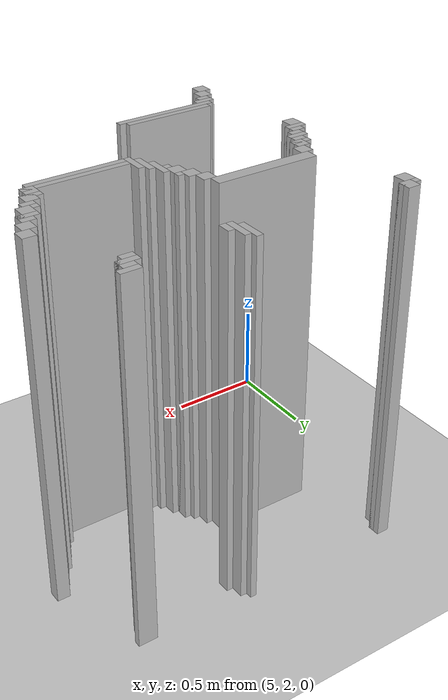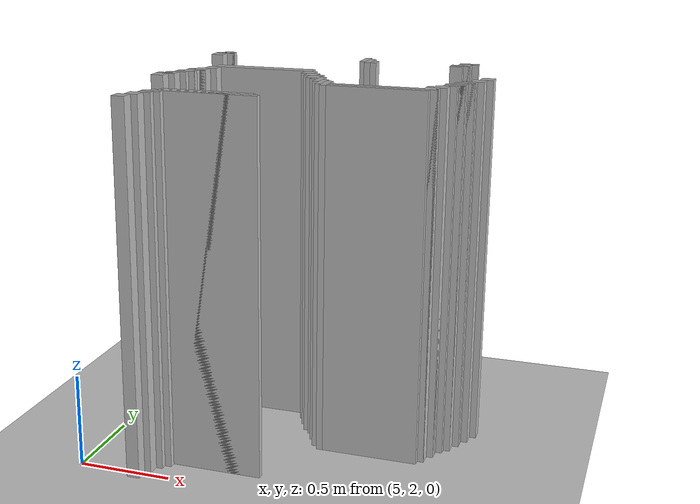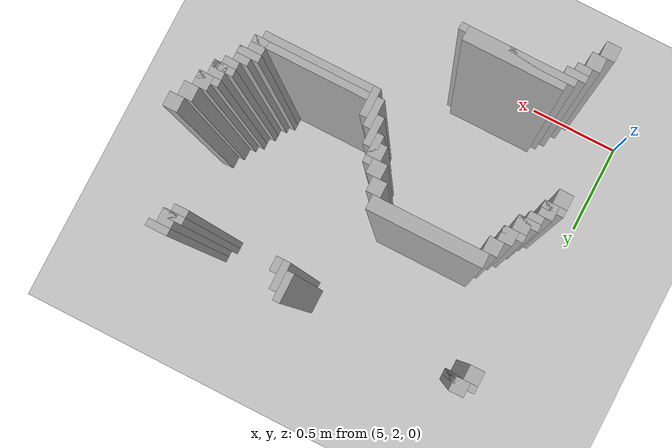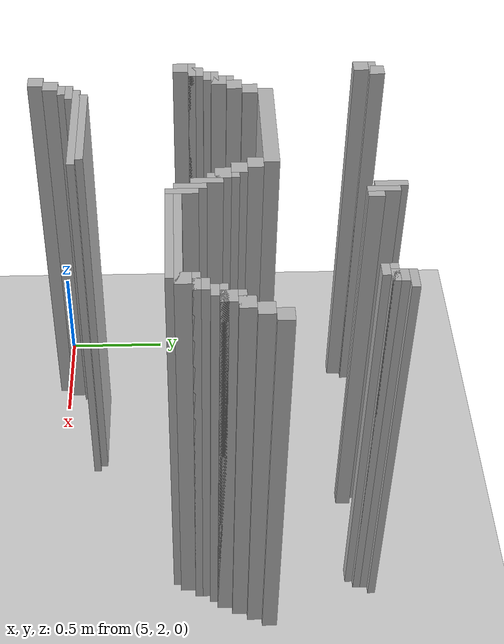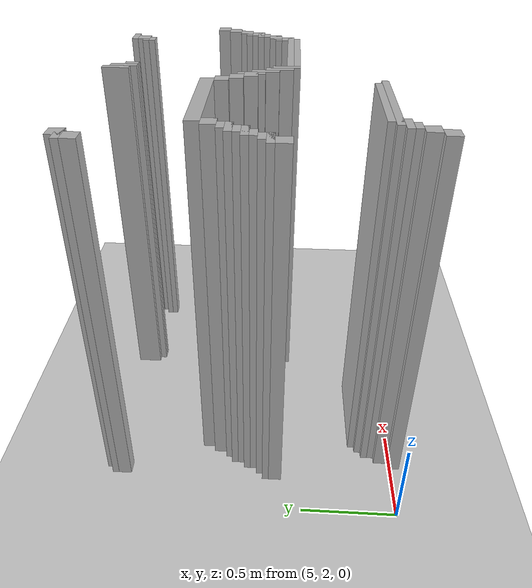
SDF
<sdf version="1.6">
 <world name="slam_world">
  <model name="ground_plane">
   <static>true</static>
   <link name="link">
    <collision name="collision">
     <geometry><plane><normal>0 0 1</normal><size>100 100</size></plane></geometry>
    </collision>
    <visual name="visual">
     <geometry><plane><normal>0 0 1</normal><size>100 100</size></plane></geometry>
     <material>
      <ambient>0.8 0.8 0.8 1</ambient>
      <diffuse>0.8 0.8 0.8 1</diffuse>
      <specular>0.8 0.8 0.8 1</specular>
     </material>
    </visual>
   </link>
  </model>
  <model name="wall_4548">
   <static>true</static>
   <pose>5.25522041763341 3.549883990719257 1.0 0 0 0</pose>
   <link name="link">
    <collision name="collision">
     <geometry><box><size>0.06960556844547564 0.06960556844547564 2.0</size></box></geometry>
    </collision>
    <visual name="visual">
     <geometry><box><size>0.06960556844547564 0.06960556844547564 2.0</size></box></geometry>
     <material><ambient>0.5 0.5 0.5 1</ambient><diffuse>0.7 0.7 0.7 1</diffuse></material>
    </visual>
   </link>
  </model>
  <model name="wall_4549">
   <static>true</static>
   <pose>6.107888631090487 3.51508120649652 1.0 0 0 0</pose>
   <link name="link">
    <collision name="collision">
     <geometry><box><size>0.03480278422273782 0.13921113689095127 2.0</size></box></geometry>
    </collision>
    <visual name="visual">
     <geometry><box><size>0.03480278422273782 0.13921113689095127 2.0</size></box></geometry>
     <material><ambient>0.5 0.5 0.5 1</ambient><diffuse>0.7 0.7 0.7 1</diffuse></material>
    </visual>
   </link>
  </model>
  <model name="wall_4565">
   <static>true</static>
   <pose>5.237819025522041 3.5324825986078885 1.0 0 0 0</pose>
   <link name="link">
    <collision name="collision">
     <geometry><box><size>0.10440835266821345 0.03480278422273782 2.0</size></box></geometry>
    </collision>
    <visual name="visual">
     <geometry><box><size>0.10440835266821345 0.03480278422273782 2.0</size></box></geometry>
     <material><ambient>0.5 0.5 0.5 1</ambient><diffuse>0.7 0.7 0.7 1</diffuse></material>
    </visual>
   </link>
  </model>
  <model name="wall_4566">
   <static>true</static>
   <pose>6.142691415313225 3.480278422273782 1.0 0 0 0</pose>
   <link name="link">
    <collision name="collision">
     <geometry><box><size>0.03480278422273782 0.13921113689095127 2.0</size></box></geometry>
    </collision>
    <visual name="visual">
     <geometry><box><size>0.03480278422273782 0.13921113689095127 2.0</size></box></geometry>
     <material><ambient>0.5 0.5 0.5 1</ambient><diffuse>0.7 0.7 0.7 1</diffuse></material>
    </visual>
   </link>
  </model>
  <model name="wall_4567">
   <static>true</static>
   <pose>6.69953596287703 3.5324825986078885 1.0 0 0 0</pose>
   <link name="link">
    <collision name="collision">
     <geometry><box><size>0.10440835266821345 0.03480278422273782 2.0</size></box></geometry>
    </collision>
    <visual name="visual">
     <geometry><box><size>0.10440835266821345 0.03480278422273782 2.0</size></box></geometry>
     <material><ambient>0.5 0.5 0.5 1</ambient><diffuse>0.7 0.7 0.7 1</diffuse></material>
    </visual>
   </link>
  </model>
  <model name="wall_4579">
   <static>true</static>
   <pose>5.220417633410673 3.480278422273782 1.0 0 0 0</pose>
   <link name="link">
    <collision name="collision">
     <geometry><box><size>0.06960556844547564 0.06960556844547564 2.0</size></box></geometry>
    </collision>
    <visual name="visual">
     <geometry><box><size>0.06960556844547564 0.06960556844547564 2.0</size></box></geometry>
     <material><ambient>0.5 0.5 0.5 1</ambient><diffuse>0.7 0.7 0.7 1</diffuse></material>
    </visual>
   </link>
  </model>
  <model name="wall_4580">
   <static>true</static>
   <pose>6.682134570765661 3.480278422273782 1.0 0 0 0</pose>
   <link name="link">
    <collision name="collision">
     <geometry><box><size>0.06960556844547564 0.06960556844547564 2.0</size></box></geometry>
    </collision>
    <visual name="visual">
     <geometry><box><size>0.06960556844547564 0.06960556844547564 2.0</size></box></geometry>
     <material><ambient>0.5 0.5 0.5 1</ambient><diffuse>0.7 0.7 0.7 1</diffuse></material>
    </visual>
   </link>
  </model>
  <model name="wall_4590">
   <static>true</static>
   <pose>6.177494199535962 3.445475638051044 1.0 0 0 0</pose>
   <link name="link">
    <collision name="collision">
     <geometry><box><size>0.03480278422273782 0.06960556844547564 2.0</size></box></geometry>
    </collision>
    <visual name="visual">
     <geometry><box><size>0.03480278422273782 0.06960556844547564 2.0</size></box></geometry>
     <material><ambient>0.5 0.5 0.5 1</ambient><diffuse>0.7 0.7 0.7 1</diffuse></material>
    </visual>
   </link>
  </model>
  <model name="wall_4591">
   <static>true</static>
   <pose>6.664733178654292 3.4628770301624128 1.0 0 0 0</pose>
   <link name="link">
    <collision name="collision">
     <geometry><box><size>0.10440835266821345 0.03480278422273782 2.0</size></box></geometry>
    </collision>
    <visual name="visual">
     <geometry><box><size>0.10440835266821345 0.03480278422273782 2.0</size></box></geometry>
     <material><ambient>0.5 0.5 0.5 1</ambient><diffuse>0.7 0.7 0.7 1</diffuse></material>
    </visual>
   </link>
  </model>
  <model name="wall_4603">
   <static>true</static>
   <pose>6.647331786542924 3.428074245939675 1.0 0 0 0</pose>
   <link name="link">
    <collision name="collision">
     <geometry><box><size>0.06960556844547564 0.03480278422273782 2.0</size></box></geometry>
    </collision>
    <visual name="visual">
     <geometry><box><size>0.06960556844547564 0.03480278422273782 2.0</size></box></geometry>
     <material><ambient>0.5 0.5 0.5 1</ambient><diffuse>0.7 0.7 0.7 1</diffuse></material>
    </visual>
   </link>
  </model>
  <model name="wall_4716">
   <static>true</static>
   <pose>5.672853828306264 3.02784222737819 1.0 0 0 0</pose>
   <link name="link">
    <collision name="collision">
     <geometry><box><size>0.5568445475638051 0.06960556844547564 2.0</size></box></geometry>
    </collision>
    <visual name="visual">
     <geometry><box><size>0.5568445475638051 0.06960556844547564 2.0</size></box></geometry>
     <material><ambient>0.5 0.5 0.5 1</ambient><diffuse>0.7 0.7 0.7 1</diffuse></material>
    </visual>
   </link>
  </model>
  <model name="wall_4717">
   <static>true</static>
   <pose>6.890951276102088 3.02784222737819 1.0 0 0 0</pose>
   <link name="link">
    <collision name="collision">
     <geometry><box><size>0.06960556844547564 0.06960556844547564 2.0</size></box></geometry>
    </collision>
    <visual name="visual">
     <geometry><box><size>0.06960556844547564 0.06960556844547564 2.0</size></box></geometry>
     <material><ambient>0.5 0.5 0.5 1</ambient><diffuse>0.7 0.7 0.7 1</diffuse></material>
    </visual>
   </link>
  </model>
  <model name="wall_4736">
   <static>true</static>
   <pose>5.3944315545243615 2.9582366589327145 1.0 0 0 0</pose>
   <link name="link">
    <collision name="collision">
     <geometry><box><size>0.06960556844547564 0.06960556844547564 2.0</size></box></geometry>
    </collision>
    <visual name="visual">
     <geometry><box><size>0.06960556844547564 0.06960556844547564 2.0</size></box></geometry>
     <material><ambient>0.5 0.5 0.5 1</ambient><diffuse>0.7 0.7 0.7 1</diffuse></material>
    </visual>
   </link>
  </model>
  <model name="wall_4737">
   <static>true</static>
   <pose>5.951276102088166 2.9582366589327145 1.0 0 0 0</pose>
   <link name="link">
    <collision name="collision">
     <geometry><box><size>0.06960556844547564 0.06960556844547564 2.0</size></box></geometry>
    </collision>
    <visual name="visual">
     <geometry><box><size>0.06960556844547564 0.06960556844547564 2.0</size></box></geometry>
     <material><ambient>0.5 0.5 0.5 1</ambient><diffuse>0.7 0.7 0.7 1</diffuse></material>
    </visual>
   </link>
  </model>
  <model name="wall_4738">
   <static>true</static>
   <pose>6.85614849187935 2.9582366589327145 1.0 0 0 0</pose>
   <link name="link">
    <collision name="collision">
     <geometry><box><size>0.06960556844547564 0.06960556844547564 2.0</size></box></geometry>
    </collision>
    <visual name="visual">
     <geometry><box><size>0.06960556844547564 0.06960556844547564 2.0</size></box></geometry>
     <material><ambient>0.5 0.5 0.5 1</ambient><diffuse>0.7 0.7 0.7 1</diffuse></material>
    </visual>
   </link>
  </model>
  <model name="wall_4755">
   <static>true</static>
   <pose>5.359628770301624 2.8886310904872388 1.0 0 0 0</pose>
   <link name="link">
    <collision name="collision">
     <geometry><box><size>0.06960556844547564 0.06960556844547564 2.0</size></box></geometry>
    </collision>
    <visual name="visual">
     <geometry><box><size>0.06960556844547564 0.06960556844547564 2.0</size></box></geometry>
     <material><ambient>0.5 0.5 0.5 1</ambient><diffuse>0.7 0.7 0.7 1</diffuse></material>
    </visual>
   </link>
  </model>
  <model name="wall_4756">
   <static>true</static>
   <pose>5.986078886310905 2.8886310904872388 1.0 0 0 0</pose>
   <link name="link">
    <collision name="collision">
     <geometry><box><size>0.06960556844547564 0.06960556844547564 2.0</size></box></geometry>
    </collision>
    <visual name="visual">
     <geometry><box><size>0.06960556844547564 0.06960556844547564 2.0</size></box></geometry>
     <material><ambient>0.5 0.5 0.5 1</ambient><diffuse>0.7 0.7 0.7 1</diffuse></material>
    </visual>
   </link>
  </model>
  <model name="wall_4757">
   <static>true</static>
   <pose>6.821345707656612 2.8886310904872388 1.0 0 0 0</pose>
   <link name="link">
    <collision name="collision">
     <geometry><box><size>0.06960556844547564 0.06960556844547564 2.0</size></box></geometry>
    </collision>
    <visual name="visual">
     <geometry><box><size>0.06960556844547564 0.06960556844547564 2.0</size></box></geometry>
     <material><ambient>0.5 0.5 0.5 1</ambient><diffuse>0.7 0.7 0.7 1</diffuse></material>
    </visual>
   </link>
  </model>
  <model name="wall_4771">
   <static>true</static>
   <pose>5.342227378190255 2.87122969837587 1.0 0 0 0</pose>
   <link name="link">
    <collision name="collision">
     <geometry><box><size>0.10440835266821345 0.03480278422273782 2.0</size></box></geometry>
    </collision>
    <visual name="visual">
     <geometry><box><size>0.10440835266821345 0.03480278422273782 2.0</size></box></geometry>
     <material><ambient>0.5 0.5 0.5 1</ambient><diffuse>0.7 0.7 0.7 1</diffuse></material>
    </visual>
   </link>
  </model>
  <model name="wall_4772">
   <static>true</static>
   <pose>6.038283062645012 2.819025522041763 1.0 0 0 0</pose>
   <link name="link">
    <collision name="collision">
     <geometry><box><size>0.03480278422273782 0.13921113689095127 2.0</size></box></geometry>
    </collision>
    <visual name="visual">
     <geometry><box><size>0.03480278422273782 0.13921113689095127 2.0</size></box></geometry>
     <material><ambient>0.5 0.5 0.5 1</ambient><diffuse>0.7 0.7 0.7 1</diffuse></material>
    </visual>
   </link>
  </model>
  <model name="wall_4773">
   <static>true</static>
   <pose>6.803944315545244 2.87122969837587 1.0 0 0 0</pose>
   <link name="link">
    <collision name="collision">
     <geometry><box><size>0.10440835266821345 0.03480278422273782 2.0</size></box></geometry>
    </collision>
    <visual name="visual">
     <geometry><box><size>0.10440835266821345 0.03480278422273782 2.0</size></box></geometry>
     <material><ambient>0.5 0.5 0.5 1</ambient><diffuse>0.7 0.7 0.7 1</diffuse></material>
    </visual>
   </link>
  </model>
  <model name="wall_4787">
   <static>true</static>
   <pose>5.324825986078886 2.819025522041763 1.0 0 0 0</pose>
   <link name="link">
    <collision name="collision">
     <geometry><box><size>0.06960556844547564 0.06960556844547564 2.0</size></box></geometry>
    </collision>
    <visual name="visual">
     <geometry><box><size>0.06960556844547564 0.06960556844547564 2.0</size></box></geometry>
     <material><ambient>0.5 0.5 0.5 1</ambient><diffuse>0.7 0.7 0.7 1</diffuse></material>
    </visual>
   </link>
  </model>
  <model name="wall_4788">
   <static>true</static>
   <pose>6.020881670533642 2.819025522041763 1.0 0 0 0</pose>
   <link name="link">
    <collision name="collision">
     <geometry><box><size>0.06960556844547564 0.06960556844547564 2.0</size></box></geometry>
    </collision>
    <visual name="visual">
     <geometry><box><size>0.06960556844547564 0.06960556844547564 2.0</size></box></geometry>
     <material><ambient>0.5 0.5 0.5 1</ambient><diffuse>0.7 0.7 0.7 1</diffuse></material>
    </visual>
   </link>
  </model>
  <model name="wall_4789">
   <static>true</static>
   <pose>6.786542923433874 2.819025522041763 1.0 0 0 0</pose>
   <link name="link">
    <collision name="collision">
     <geometry><box><size>0.06960556844547564 0.06960556844547564 2.0</size></box></geometry>
    </collision>
    <visual name="visual">
     <geometry><box><size>0.06960556844547564 0.06960556844547564 2.0</size></box></geometry>
     <material><ambient>0.5 0.5 0.5 1</ambient><diffuse>0.7 0.7 0.7 1</diffuse></material>
    </visual>
   </link>
  </model>
  <model name="wall_4803">
   <static>true</static>
   <pose>5.307424593967517 2.8016241299303943 1.0 0 0 0</pose>
   <link name="link">
    <collision name="collision">
     <geometry><box><size>0.10440835266821345 0.03480278422273782 2.0</size></box></geometry>
    </collision>
    <visual name="visual">
     <geometry><box><size>0.10440835266821345 0.03480278422273782 2.0</size></box></geometry>
     <material><ambient>0.5 0.5 0.5 1</ambient><diffuse>0.7 0.7 0.7 1</diffuse></material>
    </visual>
   </link>
  </model>
  <model name="wall_4804">
   <static>true</static>
   <pose>6.073085846867749 2.7494199535962878 1.0 0 0 0</pose>
   <link name="link">
    <collision name="collision">
     <geometry><box><size>0.03480278422273782 0.13921113689095127 2.0</size></box></geometry>
    </collision>
    <visual name="visual">
     <geometry><box><size>0.03480278422273782 0.13921113689095127 2.0</size></box></geometry>
     <material><ambient>0.5 0.5 0.5 1</ambient><diffuse>0.7 0.7 0.7 1</diffuse></material>
    </visual>
   </link>
  </model>
  <model name="wall_4805">
   <static>true</static>
   <pose>6.769141531322505 2.8016241299303943 1.0 0 0 0</pose>
   <link name="link">
    <collision name="collision">
     <geometry><box><size>0.10440835266821345 0.03480278422273782 2.0</size></box></geometry>
    </collision>
    <visual name="visual">
     <geometry><box><size>0.10440835266821345 0.03480278422273782 2.0</size></box></geometry>
     <material><ambient>0.5 0.5 0.5 1</ambient><diffuse>0.7 0.7 0.7 1</diffuse></material>
    </visual>
   </link>
  </model>
  <model name="wall_4816">
   <static>true</static>
   <pose>5.290023201856148 2.7668213457076565 1.0 0 0 0</pose>
   <link name="link">
    <collision name="collision">
     <geometry><box><size>0.06960556844547564 0.03480278422273782 2.0</size></box></geometry>
    </collision>
    <visual name="visual">
     <geometry><box><size>0.06960556844547564 0.03480278422273782 2.0</size></box></geometry>
     <material><ambient>0.5 0.5 0.5 1</ambient><diffuse>0.7 0.7 0.7 1</diffuse></material>
    </visual>
   </link>
  </model>
  <model name="wall_4817">
   <static>true</static>
   <pose>6.751740139211137 2.7668213457076565 1.0 0 0 0</pose>
   <link name="link">
    <collision name="collision">
     <geometry><box><size>0.06960556844547564 0.03480278422273782 2.0</size></box></geometry>
    </collision>
    <visual name="visual">
     <geometry><box><size>0.06960556844547564 0.03480278422273782 2.0</size></box></geometry>
     <material><ambient>0.5 0.5 0.5 1</ambient><diffuse>0.7 0.7 0.7 1</diffuse></material>
    </visual>
   </link>
  </model>
  <model name="wall_4827">
   <static>true</static>
   <pose>5.25522041763341 2.71461716937355 1.0 0 0 0</pose>
   <link name="link">
    <collision name="collision">
     <geometry><box><size>0.06960556844547564 0.06960556844547564 2.0</size></box></geometry>
    </collision>
    <visual name="visual">
     <geometry><box><size>0.06960556844547564 0.06960556844547564 2.0</size></box></geometry>
     <material><ambient>0.5 0.5 0.5 1</ambient><diffuse>0.7 0.7 0.7 1</diffuse></material>
    </visual>
   </link>
  </model>
  <model name="wall_4828">
   <static>true</static>
   <pose>6.107888631090487 2.679814385150812 1.0 0 0 0</pose>
   <link name="link">
    <collision name="collision">
     <geometry><box><size>0.03480278422273782 0.13921113689095127 2.0</size></box></geometry>
    </collision>
    <visual name="visual">
     <geometry><box><size>0.03480278422273782 0.13921113689095127 2.0</size></box></geometry>
     <material><ambient>0.5 0.5 0.5 1</ambient><diffuse>0.7 0.7 0.7 1</diffuse></material>
    </visual>
   </link>
  </model>
  <model name="wall_4829">
   <static>true</static>
   <pose>6.716937354988398 2.71461716937355 1.0 0 0 0</pose>
   <link name="link">
    <collision name="collision">
     <geometry><box><size>0.06960556844547564 0.06960556844547564 2.0</size></box></geometry>
    </collision>
    <visual name="visual">
     <geometry><box><size>0.06960556844547564 0.06960556844547564 2.0</size></box></geometry>
     <material><ambient>0.5 0.5 0.5 1</ambient><diffuse>0.7 0.7 0.7 1</diffuse></material>
    </visual>
   </link>
  </model>
  <model name="wall_4843">
   <static>true</static>
   <pose>5.237819025522041 2.6972157772621808 1.0 0 0 0</pose>
   <link name="link">
    <collision name="collision">
     <geometry><box><size>0.10440835266821345 0.03480278422273782 2.0</size></box></geometry>
    </collision>
    <visual name="visual">
     <geometry><box><size>0.10440835266821345 0.03480278422273782 2.0</size></box></geometry>
     <material><ambient>0.5 0.5 0.5 1</ambient><diffuse>0.7 0.7 0.7 1</diffuse></material>
    </visual>
   </link>
  </model>
  <model name="wall_4844">
   <static>true</static>
   <pose>6.142691415313225 2.645011600928074 1.0 0 0 0</pose>
   <link name="link">
    <collision name="collision">
     <geometry><box><size>0.03480278422273782 0.13921113689095127 2.0</size></box></geometry>
    </collision>
    <visual name="visual">
     <geometry><box><size>0.03480278422273782 0.13921113689095127 2.0</size></box></geometry>
     <material><ambient>0.5 0.5 0.5 1</ambient><diffuse>0.7 0.7 0.7 1</diffuse></material>
    </visual>
   </link>
  </model>
  <model name="wall_4845">
   <static>true</static>
   <pose>6.69953596287703 2.6972157772621808 1.0 0 0 0</pose>
   <link name="link">
    <collision name="collision">
     <geometry><box><size>0.10440835266821345 0.03480278422273782 2.0</size></box></geometry>
    </collision>
    <visual name="visual">
     <geometry><box><size>0.10440835266821345 0.03480278422273782 2.0</size></box></geometry>
     <material><ambient>0.5 0.5 0.5 1</ambient><diffuse>0.7 0.7 0.7 1</diffuse></material>
    </visual>
   </link>
  </model>
  <model name="wall_4856">
   <static>true</static>
   <pose>5.220417633410673 2.645011600928074 1.0 0 0 0</pose>
   <link name="link">
    <collision name="collision">
     <geometry><box><size>0.06960556844547564 0.06960556844547564 2.0</size></box></geometry>
    </collision>
    <visual name="visual">
     <geometry><box><size>0.06960556844547564 0.06960556844547564 2.0</size></box></geometry>
     <material><ambient>0.5 0.5 0.5 1</ambient><diffuse>0.7 0.7 0.7 1</diffuse></material>
    </visual>
   </link>
  </model>
  <model name="wall_4857">
   <static>true</static>
   <pose>6.682134570765661 2.645011600928074 1.0 0 0 0</pose>
   <link name="link">
    <collision name="collision">
     <geometry><box><size>0.06960556844547564 0.06960556844547564 2.0</size></box></geometry>
    </collision>
    <visual name="visual">
     <geometry><box><size>0.06960556844547564 0.06960556844547564 2.0</size></box></geometry>
     <material><ambient>0.5 0.5 0.5 1</ambient><diffuse>0.7 0.7 0.7 1</diffuse></material>
    </visual>
   </link>
  </model>
  <model name="wall_4868">
   <static>true</static>
   <pose>6.438515081206496 2.627610208816705 1.0 0 0 0</pose>
   <link name="link">
    <collision name="collision">
     <geometry><box><size>0.5568445475638051 0.03480278422273782 2.0</size></box></geometry>
    </collision>
    <visual name="visual">
     <geometry><box><size>0.5568445475638051 0.03480278422273782 2.0</size></box></geometry>
     <material><ambient>0.5 0.5 0.5 1</ambient><diffuse>0.7 0.7 0.7 1</diffuse></material>
    </visual>
   </link>
  </model>
  <model name="wall_4881">
   <static>true</static>
   <pose>6.421113689095128 2.5928074245939676 1.0 0 0 0</pose>
   <link name="link">
    <collision name="collision">
     <geometry><box><size>0.5220417633410672 0.03480278422273782 2.0</size></box></geometry>
    </collision>
    <visual name="visual">
     <geometry><box><size>0.5220417633410672 0.03480278422273782 2.0</size></box></geometry>
     <material><ambient>0.5 0.5 0.5 1</ambient><diffuse>0.7 0.7 0.7 1</diffuse></material>
    </visual>
   </link>
  </model>
  <model name="wall_4997">
   <static>true</static>
   <pose>5.672853828306264 2.1925754060324825 1.0 0 0 0</pose>
   <link name="link">
    <collision name="collision">
     <geometry><box><size>0.4872389791183295 0.06960556844547564 2.0</size></box></geometry>
    </collision>
    <visual name="visual">
     <geometry><box><size>0.4872389791183295 0.06960556844547564 2.0</size></box></geometry>
     <material><ambient>0.5 0.5 0.5 1</ambient><diffuse>0.7 0.7 0.7 1</diffuse></material>
    </visual>
   </link>
  </model>
  <model name="wall_5008">
   <static>true</static>
   <pose>5.672853828306264 2.1751740139211138 1.0 0 0 0</pose>
   <link name="link">
    <collision name="collision">
     <geometry><box><size>0.5568445475638051 0.03480278422273782 2.0</size></box></geometry>
    </collision>
    <visual name="visual">
     <geometry><box><size>0.5568445475638051 0.03480278422273782 2.0</size></box></geometry>
     <material><ambient>0.5 0.5 0.5 1</ambient><diffuse>0.7 0.7 0.7 1</diffuse></material>
    </visual>
   </link>
  </model>
  <model name="wall_5022">
   <static>true</static>
   <pose>5.41183294663573 2.140371229698376 1.0 0 0 0</pose>
   <link name="link">
    <collision name="collision">
     <geometry><box><size>0.10440835266821345 0.03480278422273782 2.0</size></box></geometry>
    </collision>
    <visual name="visual">
     <geometry><box><size>0.10440835266821345 0.03480278422273782 2.0</size></box></geometry>
     <material><ambient>0.5 0.5 0.5 1</ambient><diffuse>0.7 0.7 0.7 1</diffuse></material>
    </visual>
   </link>
  </model>
  <model name="wall_5037">
   <static>true</static>
   <pose>5.3944315545243615 2.105568445475638 1.0 0 0 0</pose>
   <link name="link">
    <collision name="collision">
     <geometry><box><size>0.06960556844547564 0.03480278422273782 2.0</size></box></geometry>
    </collision>
    <visual name="visual">
     <geometry><box><size>0.06960556844547564 0.03480278422273782 2.0</size></box></geometry>
     <material><ambient>0.5 0.5 0.5 1</ambient><diffuse>0.7 0.7 0.7 1</diffuse></material>
    </visual>
   </link>
  </model>
  <model name="wall_5050">
   <static>true</static>
   <pose>5.359628770301624 2.053364269141531 1.0 0 0 0</pose>
   <link name="link">
    <collision name="collision">
     <geometry><box><size>0.06960556844547564 0.06960556844547564 2.0</size></box></geometry>
    </collision>
    <visual name="visual">
     <geometry><box><size>0.06960556844547564 0.06960556844547564 2.0</size></box></geometry>
     <material><ambient>0.5 0.5 0.5 1</ambient><diffuse>0.7 0.7 0.7 1</diffuse></material>
    </visual>
   </link>
  </model>
  <model name="wall_5063">
   <static>true</static>
   <pose>5.324825986078886 1.9837587006960555 1.0 0 0 0</pose>
   <link name="link">
    <collision name="collision">
     <geometry><box><size>0.06960556844547564 0.06960556844547564 2.0</size></box></geometry>
    </collision>
    <visual name="visual">
     <geometry><box><size>0.06960556844547564 0.06960556844547564 2.0</size></box></geometry>
     <material><ambient>0.5 0.5 0.5 1</ambient><diffuse>0.7 0.7 0.7 1</diffuse></material>
    </visual>
   </link>
  </model>
 </world>
</sdf>
